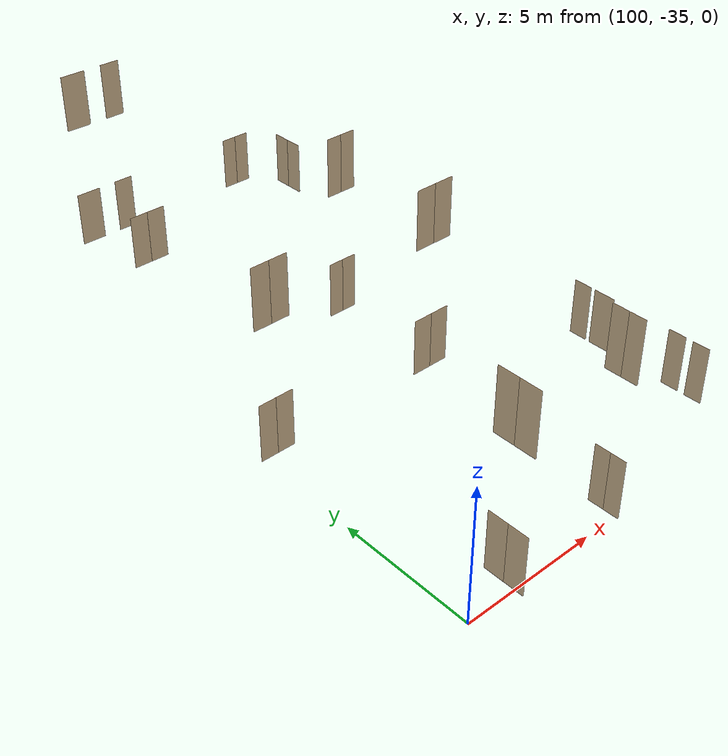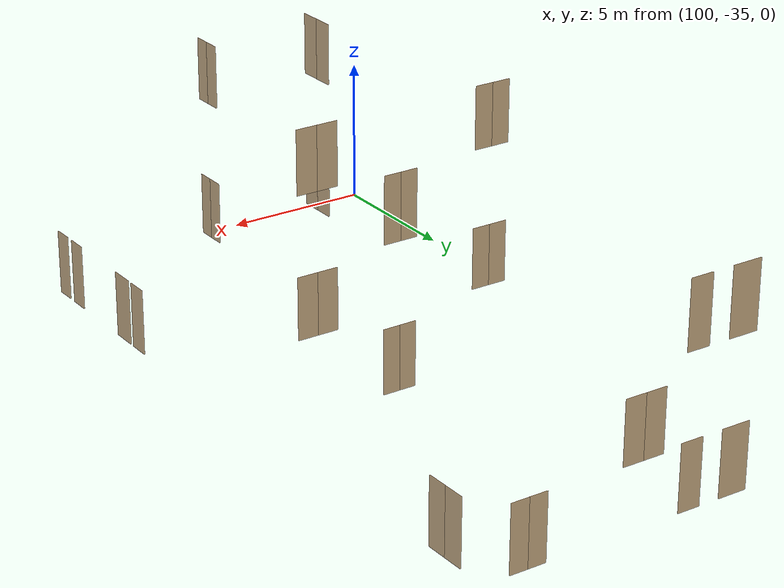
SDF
<sdf version="1.7">
 <world name="sim_world">
  <model name="nullA4">
   <pose>103.26733441063939 -10.786074891340695 0.0 0 0 0.0</pose>
   <link name="right">
    <pose>0 0 1.11 0 0 0</pose>
    <visual name="right_visual">
     <geometry><box><size>0.9855600133734492 0.03 2.2</size></box></geometry>
     <material>
      <ambient>0.5 0.25 0 0.6</ambient>
      <diffuse>0.5 0.25 0 0.6</diffuse>
      <pbr><metal><metalness>0.0</metalness></metal></pbr>
     </material>
    </visual>
    <collision name="right_collision">
     <geometry><box><size>0.9855600133734492 0.03 2.2</size></box></geometry>
     <surface><contact><collide_bitmask>0x02</collide_bitmask></contact></surface>
    </collision>
    <inertial>
     <mass>50.0</mass>
     <inertia><ixx>20.17041666666667</ixx><iyy>24.21386891650281</iyy><izz>4.05095224983614</izz></inertia>
    </inertial>
   </link>
   <joint name="right_joint" type="revolute">
    <parent>world</parent>
    <child>right</child>
    <axis><xyz>0 0 -1</xyz><limit><lower>0</lower><upper>1.57</upper></limit></axis>
    <pose>0.4977800066867246 0 0 0 0 0</pose>
   </joint>
   <plugin name="register_component" filename="libregister_component.so">
    <component name="Door">
     <v_max_door>0.5</v_max_door>
     <a_max_door>0.3</a_max_door>
     <a_nom_door>0.15</a_nom_door>
     <dx_min_door>0.01</dx_min_door>
     <f_max_door>500.0</f_max_door>
     <ros_interface>true</ros_interface>
     <door name="nullA4" type="SwingDoor" left_joint_name="empty_joint" right_joint_name="right_joint"/>
    </component>
   </plugin>
  </model>
  <model name="nullA5">
   <pose>104.86228908949076 -10.786074891340695 0.0 0 0 0.0</pose>
   <link name="right">
    <pose>0 0 1.11 0 0 0</pose>
    <visual name="right_visual">
     <geometry><box><size>0.7620806865039549 0.03 2.2</size></box></geometry>
     <material>
      <ambient>0.5 0.25 0 0.6</ambient>
      <diffuse>0.5 0.25 0 0.6</diffuse>
      <pbr><metal><metalness>0.0</metalness></metal></pbr>
     </material>
    </visual>
    <collision name="right_collision">
     <geometry><box><size>0.7620806865039549 0.03 2.2</size></box></geometry>
     <surface><contact><collide_bitmask>0x02</collide_bitmask></contact></surface>
    </collision>
    <inertial>
     <mass>50.0</mass>
     <inertia><ixx>20.17041666666667</ixx><iyy>22.586529053093084</iyy><izz>2.4236123864264134</izz></inertia>
    </inertial>
   </link>
   <joint name="right_joint" type="revolute">
    <parent>world</parent>
    <child>right</child>
    <axis><xyz>0 0 -1</xyz><limit><lower>0</lower><upper>1.57</upper></limit></axis>
    <pose>0.38604034325197745 0 0 0 0 0</pose>
   </joint>
   <plugin name="register_component" filename="libregister_component.so">
    <component name="Door">
     <v_max_door>0.5</v_max_door>
     <a_max_door>0.3</a_max_door>
     <a_nom_door>0.15</a_nom_door>
     <dx_min_door>0.01</dx_min_door>
     <f_max_door>500.0</f_max_door>
     <ros_interface>true</ros_interface>
     <door name="nullA5" type="SwingDoor" left_joint_name="empty_joint" right_joint_name="right_joint"/>
    </component>
   </plugin>
  </model>
  <model name="nullA6">
   <pose>110.47514571492262 -10.772359857349835 0.0 0 0 3.141592653589793</pose>
   <link name="right">
    <pose>0.3061551784984573 0 1.11 0 0 0</pose>
    <visual name="right_visual">
     <geometry><box><size>0.6023103569969146 0.03 2.2</size></box></geometry>
     <material>
      <ambient>0.5 0.25 0 0.6</ambient>
      <diffuse>0.5 0.25 0 0.6</diffuse>
      <pbr><metal><metalness>0.0</metalness></metal></pbr>
     </material>
    </visual>
    <collision name="right_collision">
     <geometry><box><size>0.6023103569969146 0.03 2.2</size></box></geometry>
     <surface><contact><collide_bitmask>0x02</collide_bitmask></contact></surface>
    </collision>
    <inertial>
     <mass>50.0</mass>
     <inertia><ixx>20.17041666666667</ixx><iyy>21.678240692273967</iyy><izz>1.5153240256072946</izz></inertia>
    </inertial>
   </link>
   <joint name="right_joint" type="revolute">
    <parent>world</parent>
    <child>right</child>
    <axis><xyz>0 0 -1</xyz><limit><lower>0</lower><upper>1.57</upper></limit></axis>
    <pose>0.3061551784984573 0 0 0 0 0</pose>
   </joint>
   <link name="left">
    <pose>-0.3061551784984573 0 1.11 0 0 0</pose>
    <visual name="left_visual">
     <geometry><box><size>0.6023103569969146 0.03 2.2</size></box></geometry>
     <material>
      <ambient>0.5 0.25 0 0.6</ambient>
      <diffuse>0.5 0.25 0 0.6</diffuse>
      <pbr><metal><metalness>0.0</metalness></metal></pbr>
     </material>
    </visual>
    <collision name="left_collision">
     <geometry><box><size>0.6023103569969146 0.03 2.2</size></box></geometry>
     <surface><contact><collide_bitmask>0x02</collide_bitmask></contact></surface>
    </collision>
    <inertial>
     <mass>50.0</mass>
     <inertia><ixx>20.17041666666667</ixx><iyy>21.678240692273967</iyy><izz>1.5153240256072946</izz></inertia>
    </inertial>
   </link>
   <joint name="left_joint" type="revolute">
    <parent>world</parent>
    <child>left</child>
    <axis><xyz>0 0 -1</xyz><limit><lower>-1.57</lower><upper>0</upper></limit></axis>
    <pose>-0.3061551784984573 0 0 0 0 0</pose>
   </joint>
   <plugin name="register_component" filename="libregister_component.so">
    <component name="Door">
     <v_max_door>0.5</v_max_door>
     <a_max_door>0.3</a_max_door>
     <a_nom_door>0.15</a_nom_door>
     <dx_min_door>0.01</dx_min_door>
     <f_max_door>500.0</f_max_door>
     <ros_interface>true</ros_interface>
     <door name="nullA6" type="DoubleSwingDoor" left_joint_name="left_joint" right_joint_name="right_joint"/>
    </component>
   </plugin>
  </model>
  <model name="nullA7">
   <pose>111.96544262416887 -12.496836063746805 0.0 0 0 1.5844014553708272</pose>
   <link name="right">
    <pose>0.36283689730992447 0 1.11 0 0 0</pose>
    <visual name="right_visual">
     <geometry><box><size>0.7156737946198489 0.03 2.2</size></box></geometry>
     <material>
      <ambient>0.5 0.25 0 0.6</ambient>
      <diffuse>0.5 0.25 0 0.6</diffuse>
      <pbr><metal><metalness>0.0</metalness></metal></pbr>
     </material>
    </visual>
    <collision name="right_collision">
     <geometry><box><size>0.7156737946198489 0.03 2.2</size></box></geometry>
     <surface><contact><collide_bitmask>0x02</collide_bitmask></contact></surface>
    </collision>
    <inertial>
     <mass>50.0</mass>
     <inertia><ixx>20.17041666666667</ixx><iyy>22.300787417939894</iyy><izz>2.137870751273224</izz></inertia>
    </inertial>
   </link>
   <joint name="right_joint" type="revolute">
    <parent>world</parent>
    <child>right</child>
    <axis><xyz>0 0 -1</xyz><limit><lower>0</lower><upper>1.57</upper></limit></axis>
    <pose>0.36283689730992447 0 0 0 0 0</pose>
   </joint>
   <link name="left">
    <pose>-0.36283689730992447 0 1.11 0 0 0</pose>
    <visual name="left_visual">
     <geometry><box><size>0.7156737946198489 0.03 2.2</size></box></geometry>
     <material>
      <ambient>0.5 0.25 0 0.6</ambient>
      <diffuse>0.5 0.25 0 0.6</diffuse>
      <pbr><metal><metalness>0.0</metalness></metal></pbr>
     </material>
    </visual>
    <collision name="left_collision">
     <geometry><box><size>0.7156737946198489 0.03 2.2</size></box></geometry>
     <surface><contact><collide_bitmask>0x02</collide_bitmask></contact></surface>
    </collision>
    <inertial>
     <mass>50.0</mass>
     <inertia><ixx>20.17041666666667</ixx><iyy>22.300787417939894</iyy><izz>2.137870751273224</izz></inertia>
    </inertial>
   </link>
   <joint name="left_joint" type="revolute">
    <parent>world</parent>
    <child>left</child>
    <axis><xyz>0 0 -1</xyz><limit><lower>-1.57</lower><upper>0</upper></limit></axis>
    <pose>-0.36283689730992447 0 0 0 0 0</pose>
   </joint>
   <plugin name="register_component" filename="libregister_component.so">
    <component name="Door">
     <v_max_door>0.5</v_max_door>
     <a_max_door>0.3</a_max_door>
     <a_nom_door>0.15</a_nom_door>
     <dx_min_door>0.01</dx_min_door>
     <f_max_door>500.0</f_max_door>
     <ros_interface>true</ros_interface>
     <door name="nullA7" type="DoubleSwingDoor" left_joint_name="left_joint" right_joint_name="right_joint"/>
    </component>
   </plugin>
  </model>
  <model name="nullA8">
   <pose>107.422540956202 -21.278356365392487 0.0 0 0 3.141592653589793</pose>
   <link name="right">
    <pose>0.2911429659348421 0 1.11 0 0 0</pose>
    <visual name="right_visual">
     <geometry><box><size>0.5722859318696842 0.03 2.2</size></box></geometry>
     <material>
      <ambient>0.5 0.25 0 0.6</ambient>
      <diffuse>0.5 0.25 0 0.6</diffuse>
      <pbr><metal><metalness>0.0</metalness></metal></pbr>
     </material>
    </visual>
    <collision name="right_collision">
     <geometry><box><size>0.5722859318696842 0.03 2.2</size></box></geometry>
     <surface><contact><collide_bitmask>0x02</collide_bitmask></contact></surface>
    </collision>
    <inertial>
     <mass>50.0</mass>
     <inertia><ixx>20.17041666666667</ixx><iyy>21.53129661589981</iyy><izz>1.3683799492331372</izz></inertia>
    </inertial>
   </link>
   <joint name="right_joint" type="revolute">
    <parent>world</parent>
    <child>right</child>
    <axis><xyz>0 0 -1</xyz><limit><lower>0</lower><upper>1.57</upper></limit></axis>
    <pose>0.2911429659348421 0 0 0 0 0</pose>
   </joint>
   <link name="left">
    <pose>-0.2911429659348421 0 1.11 0 0 0</pose>
    <visual name="left_visual">
     <geometry><box><size>0.5722859318696842 0.03 2.2</size></box></geometry>
     <material>
      <ambient>0.5 0.25 0 0.6</ambient>
      <diffuse>0.5 0.25 0 0.6</diffuse>
      <pbr><metal><metalness>0.0</metalness></metal></pbr>
     </material>
    </visual>
    <collision name="left_collision">
     <geometry><box><size>0.5722859318696842 0.03 2.2</size></box></geometry>
     <surface><contact><collide_bitmask>0x02</collide_bitmask></contact></surface>
    </collision>
    <inertial>
     <mass>50.0</mass>
     <inertia><ixx>20.17041666666667</ixx><iyy>21.53129661589981</iyy><izz>1.3683799492331372</izz></inertia>
    </inertial>
   </link>
   <joint name="left_joint" type="revolute">
    <parent>world</parent>
    <child>left</child>
    <axis><xyz>0 0 -1</xyz><limit><lower>-1.57</lower><upper>0</upper></limit></axis>
    <pose>-0.2911429659348421 0 0 0 0 0</pose>
   </joint>
   <plugin name="register_component" filename="libregister_component.so">
    <component name="Door">
     <v_max_door>0.5</v_max_door>
     <a_max_door>0.3</a_max_door>
     <a_nom_door>0.15</a_nom_door>
     <dx_min_door>0.01</dx_min_door>
     <f_max_door>500.0</f_max_door>
     <ros_interface>true</ros_interface>
     <door name="nullA8" type="DoubleSwingDoor" left_joint_name="left_joint" right_joint_name="right_joint"/>
    </component>
   </plugin>
  </model>
  <model name="nullA9">
   <pose>107.40374939633722 -25.899032653516123 0.0 0 0 0.0</pose>
   <link name="right">
    <pose>0.3756629146699346 0 1.11 0 0 0</pose>
    <visual name="right_visual">
     <geometry><box><size>0.7413258293398692 0.03 2.2</size></box></geometry>
     <material>
      <ambient>0.5 0.25 0 0.6</ambient>
      <diffuse>0.5 0.25 0 0.6</diffuse>
      <pbr><metal><metalness>0.0</metalness></metal></pbr>
     </material>
    </visual>
    <collision name="right_collision">
     <geometry><box><size>0.7413258293398692 0.03 2.2</size></box></geometry>
     <surface><contact><collide_bitmask>0x02</collide_bitmask></contact></surface>
    </collision>
    <inertial>
     <mass>50.0</mass>
     <inertia><ixx>20.17041666666667</ixx><iyy>22.456516605193524</iyy><izz>2.293599938526854</izz></inertia>
    </inertial>
   </link>
   <joint name="right_joint" type="revolute">
    <parent>world</parent>
    <child>right</child>
    <axis><xyz>0 0 -1</xyz><limit><lower>0</lower><upper>1.57</upper></limit></axis>
    <pose>0.3756629146699346 0 0 0 0 0</pose>
   </joint>
   <link name="left">
    <pose>-0.3756629146699346 0 1.11 0 0 0</pose>
    <visual name="left_visual">
     <geometry><box><size>0.7413258293398692 0.03 2.2</size></box></geometry>
     <material>
      <ambient>0.5 0.25 0 0.6</ambient>
      <diffuse>0.5 0.25 0 0.6</diffuse>
      <pbr><metal><metalness>0.0</metalness></metal></pbr>
     </material>
    </visual>
    <collision name="left_collision">
     <geometry><box><size>0.7413258293398692 0.03 2.2</size></box></geometry>
     <surface><contact><collide_bitmask>0x02</collide_bitmask></contact></surface>
    </collision>
    <inertial>
     <mass>50.0</mass>
     <inertia><ixx>20.17041666666667</ixx><iyy>22.456516605193524</iyy><izz>2.293599938526854</izz></inertia>
    </inertial>
   </link>
   <joint name="left_joint" type="revolute">
    <parent>world</parent>
    <child>left</child>
    <axis><xyz>0 0 -1</xyz><limit><lower>-1.57</lower><upper>0</upper></limit></axis>
    <pose>-0.3756629146699346 0 0 0 0 0</pose>
   </joint>
   <plugin name="register_component" filename="libregister_component.so">
    <component name="Door">
     <v_max_door>0.5</v_max_door>
     <a_max_door>0.3</a_max_door>
     <a_nom_door>0.15</a_nom_door>
     <dx_min_door>0.01</dx_min_door>
     <f_max_door>500.0</f_max_door>
     <ros_interface>true</ros_interface>
     <door name="nullA9" type="DoubleSwingDoor" left_joint_name="left_joint" right_joint_name="right_joint"/>
    </component>
   </plugin>
  </model>
  <model name="nullA10">
   <pose>100.60339239942056 -25.975096400312065 0.0 0 0 0.0</pose>
   <link name="right">
    <pose>0.33268072736728627 0 1.11 0 0 0</pose>
    <visual name="right_visual">
     <geometry><box><size>0.6553614547345725 0.03 2.2</size></box></geometry>
     <material>
      <ambient>0.5 0.25 0 0.6</ambient>
      <diffuse>0.5 0.25 0 0.6</diffuse>
      <pbr><metal><metalness>0.0</metalness></metal></pbr>
     </material>
    </visual>
    <collision name="right_collision">
     <geometry><box><size>0.6553614547345725 0.03 2.2</size></box></geometry>
     <surface><contact><collide_bitmask>0x02</collide_bitmask></contact></surface>
    </collision>
    <inertial>
     <mass>50.0</mass>
     <inertia><ixx>20.17041666666667</ixx><iyy>21.95624431813257</iyy><izz>1.7933276514658967</izz></inertia>
    </inertial>
   </link>
   <joint name="right_joint" type="revolute">
    <parent>world</parent>
    <child>right</child>
    <axis><xyz>0 0 -1</xyz><limit><lower>0</lower><upper>1.57</upper></limit></axis>
    <pose>0.33268072736728627 0 0 0 0 0</pose>
   </joint>
   <link name="left">
    <pose>-0.33268072736728627 0 1.11 0 0 0</pose>
    <visual name="left_visual">
     <geometry><box><size>0.6553614547345725 0.03 2.2</size></box></geometry>
     <material>
      <ambient>0.5 0.25 0 0.6</ambient>
      <diffuse>0.5 0.25 0 0.6</diffuse>
      <pbr><metal><metalness>0.0</metalness></metal></pbr>
     </material>
    </visual>
    <collision name="left_collision">
     <geometry><box><size>0.6553614547345725 0.03 2.2</size></box></geometry>
     <surface><contact><collide_bitmask>0x02</collide_bitmask></contact></surface>
    </collision>
    <inertial>
     <mass>50.0</mass>
     <inertia><ixx>20.17041666666667</ixx><iyy>21.95624431813257</iyy><izz>1.7933276514658967</izz></inertia>
    </inertial>
   </link>
   <joint name="left_joint" type="revolute">
    <parent>world</parent>
    <child>left</child>
    <axis><xyz>0 0 -1</xyz><limit><lower>-1.57</lower><upper>0</upper></limit></axis>
    <pose>-0.33268072736728627 0 0 0 0 0</pose>
   </joint>
   <plugin name="register_component" filename="libregister_component.so">
    <component name="Door">
     <v_max_door>0.5</v_max_door>
     <a_max_door>0.3</a_max_door>
     <a_nom_door>0.15</a_nom_door>
     <dx_min_door>0.01</dx_min_door>
     <f_max_door>500.0</f_max_door>
     <ros_interface>true</ros_interface>
     <door name="nullA10" type="DoubleSwingDoor" left_joint_name="left_joint" right_joint_name="right_joint"/>
    </component>
   </plugin>
  </model>
  <model name="nullA26">
   <pose>101.86914419183483 -34.56450806122072 0.0 0 0 1.5759517900146587</pose>
   <link name="right">
    <pose>0.37402011778586763 0 1.11 0 0 0</pose>
    <visual name="right_visual">
     <geometry><box><size>0.7380402355717353 0.03 2.2</size></box></geometry>
     <material>
      <ambient>0.5 0.25 0 0.6</ambient>
      <diffuse>0.5 0.25 0 0.6</diffuse>
      <pbr><metal><metalness>0.0</metalness></metal></pbr>
     </material>
    </visual>
    <collision name="right_collision">
     <geometry><box><size>0.7380402355717353 0.03 2.2</size></box></geometry>
     <surface><contact><collide_bitmask>0x02</collide_bitmask></contact></surface>
    </collision>
    <inertial>
     <mass>50.0</mass>
     <inertia><ixx>20.17041666666667</ixx><iyy>22.436264122178265</iyy><izz>2.273347455511594</izz></inertia>
    </inertial>
   </link>
   <joint name="right_joint" type="revolute">
    <parent>world</parent>
    <child>right</child>
    <axis><xyz>0 0 1</xyz><limit><lower>0</lower><upper>1.57</upper></limit></axis>
    <pose>0.37402011778586763 0 0 0 0 0</pose>
   </joint>
   <link name="left">
    <pose>-0.37402011778586763 0 1.11 0 0 0</pose>
    <visual name="left_visual">
     <geometry><box><size>0.7380402355717353 0.03 2.2</size></box></geometry>
     <material>
      <ambient>0.5 0.25 0 0.6</ambient>
      <diffuse>0.5 0.25 0 0.6</diffuse>
      <pbr><metal><metalness>0.0</metalness></metal></pbr>
     </material>
    </visual>
    <collision name="left_collision">
     <geometry><box><size>0.7380402355717353 0.03 2.2</size></box></geometry>
     <surface><contact><collide_bitmask>0x02</collide_bitmask></contact></surface>
    </collision>
    <inertial>
     <mass>50.0</mass>
     <inertia><ixx>20.17041666666667</ixx><iyy>22.436264122178265</iyy><izz>2.273347455511594</izz></inertia>
    </inertial>
   </link>
   <joint name="left_joint" type="revolute">
    <parent>world</parent>
    <child>left</child>
    <axis><xyz>0 0 1</xyz><limit><lower>-1.57</lower><upper>0</upper></limit></axis>
    <pose>-0.37402011778586763 0 0 0 0 0</pose>
   </joint>
   <plugin name="register_component" filename="libregister_component.so">
    <component name="Door">
     <v_max_door>0.5</v_max_door>
     <a_max_door>0.3</a_max_door>
     <a_nom_door>0.15</a_nom_door>
     <dx_min_door>0.01</dx_min_door>
     <f_max_door>500.0</f_max_door>
     <ros_interface>true</ros_interface>
     <door name="nullA26" type="DoubleSwingDoor" left_joint_name="left_joint" right_joint_name="right_joint"/>
    </component>
   </plugin>
  </model>
  <model name="nullA27">
   <pose>106.27885016159597 -34.550891192094824 0.0 0 0 1.5744295709884155</pose>
   <link name="right">
    <pose>0.2875548345139819 0 1.11 0 0 0</pose>
    <visual name="right_visual">
     <geometry><box><size>0.5651096690279638 0.03 2.2</size></box></geometry>
     <material>
      <ambient>0.5 0.25 0 0.6</ambient>
      <diffuse>0.5 0.25 0 0.6</diffuse>
      <pbr><metal><metalness>0.0</metalness></metal></pbr>
     </material>
    </visual>
    <collision name="right_collision">
     <geometry><box><size>0.5651096690279638 0.03 2.2</size></box></geometry>
     <surface><contact><collide_bitmask>0x02</collide_bitmask></contact></surface>
    </collision>
    <inertial>
     <mass>50.0</mass>
     <inertia><ixx>20.17041666666667</ixx><iyy>21.497287241787063</iyy><izz>1.334370575120395</izz></inertia>
    </inertial>
   </link>
   <joint name="right_joint" type="revolute">
    <parent>world</parent>
    <child>right</child>
    <axis><xyz>0 0 -1</xyz><limit><lower>0</lower><upper>1.57</upper></limit></axis>
    <pose>0.2875548345139819 0 0 0 0 0</pose>
   </joint>
   <link name="left">
    <pose>-0.2875548345139819 0 1.11 0 0 0</pose>
    <visual name="left_visual">
     <geometry><box><size>0.5651096690279638 0.03 2.2</size></box></geometry>
     <material>
      <ambient>0.5 0.25 0 0.6</ambient>
      <diffuse>0.5 0.25 0 0.6</diffuse>
      <pbr><metal><metalness>0.0</metalness></metal></pbr>
     </material>
    </visual>
    <collision name="left_collision">
     <geometry><box><size>0.5651096690279638 0.03 2.2</size></box></geometry>
     <surface><contact><collide_bitmask>0x02</collide_bitmask></contact></surface>
    </collision>
    <inertial>
     <mass>50.0</mass>
     <inertia><ixx>20.17041666666667</ixx><iyy>21.497287241787063</iyy><izz>1.334370575120395</izz></inertia>
    </inertial>
   </link>
   <joint name="left_joint" type="revolute">
    <parent>world</parent>
    <child>left</child>
    <axis><xyz>0 0 -1</xyz><limit><lower>-1.57</lower><upper>0</upper></limit></axis>
    <pose>-0.2875548345139819 0 0 0 0 0</pose>
   </joint>
   <plugin name="register_component" filename="libregister_component.so">
    <component name="Door">
     <v_max_door>0.5</v_max_door>
     <a_max_door>0.3</a_max_door>
     <a_nom_door>0.15</a_nom_door>
     <dx_min_door>0.01</dx_min_door>
     <f_max_door>500.0</f_max_door>
     <ros_interface>true</ros_interface>
     <door name="nullA27" type="DoubleSwingDoor" left_joint_name="left_joint" right_joint_name="right_joint"/>
    </component>
   </plugin>
  </model>
  <model name="nullA28">
   <pose>112.69629406738743 -28.141903488242523 0.0 0 0 -1.5707963267948966</pose>
   <link name="right">
    <pose>0 0 1.11 0 0 0</pose>
    <visual name="right_visual">
     <geometry><box><size>0.7021159775623198 0.03 2.2</size></box></geometry>
     <material>
      <ambient>0.5 0.25 0 0.6</ambient>
      <diffuse>0.5 0.25 0 0.6</diffuse>
      <pbr><metal><metalness>0.0</metalness></metal></pbr>
     </material>
    </visual>
    <collision name="right_collision">
     <geometry><box><size>0.7021159775623198 0.03 2.2</size></box></geometry>
     <surface><contact><collide_bitmask>0x02</collide_bitmask></contact></surface>
    </collision>
    <inertial>
     <mass>50.0</mass>
     <inertia><ixx>20.17041666666667</ixx><iyy>22.22069519145122</iyy><izz>2.05777852478455</izz></inertia>
    </inertial>
   </link>
   <joint name="right_joint" type="revolute">
    <parent>world</parent>
    <child>right</child>
    <axis><xyz>0 0 -1</xyz><limit><lower>0</lower><upper>1.57</upper></limit></axis>
    <pose>0.3560579887811599 0 0 0 0 0</pose>
   </joint>
   <plugin name="register_component" filename="libregister_component.so">
    <component name="Door">
     <v_max_door>0.5</v_max_door>
     <a_max_door>0.3</a_max_door>
     <a_nom_door>0.15</a_nom_door>
     <dx_min_door>0.01</dx_min_door>
     <f_max_door>500.0</f_max_door>
     <ros_interface>true</ros_interface>
     <door name="nullA28" type="SwingDoor" left_joint_name="empty_joint" right_joint_name="right_joint"/>
    </component>
   </plugin>
  </model>
  <model name="nullA29">
   <pose>112.69629406738743 -29.086824454846038 0.0 0 0 -1.5707963267948966</pose>
   <link name="right">
    <pose>0 0 1.11 0 0 0</pose>
    <visual name="right_visual">
     <geometry><box><size>0.8390699877410073 0.03 2.2</size></box></geometry>
     <material>
      <ambient>0.5 0.25 0 0.6</ambient>
      <diffuse>0.5 0.25 0 0.6</diffuse>
      <pbr><metal><metalness>0.0</metalness></metal></pbr>
     </material>
    </visual>
    <collision name="right_collision">
     <geometry><box><size>0.8390699877410073 0.03 2.2</size></box></geometry>
     <surface><contact><collide_bitmask>0x02</collide_bitmask></contact></surface>
    </collision>
    <inertial>
     <mass>50.0</mass>
     <inertia><ixx>20.17041666666667</ixx><iyy>23.10016018469873</iyy><izz>2.937243518032059</izz></inertia>
    </inertial>
   </link>
   <joint name="right_joint" type="revolute">
    <parent>world</parent>
    <child>right</child>
    <axis><xyz>0 0 -1</xyz><limit><lower>0</lower><upper>1.57</upper></limit></axis>
    <pose>0.42453499387050364 0 0 0 0 0</pose>
   </joint>
   <plugin name="register_component" filename="libregister_component.so">
    <component name="Door">
     <v_max_door>0.5</v_max_door>
     <a_max_door>0.3</a_max_door>
     <a_nom_door>0.15</a_nom_door>
     <dx_min_door>0.01</dx_min_door>
     <f_max_door>500.0</f_max_door>
     <ros_interface>true</ros_interface>
     <door name="nullA29" type="SwingDoor" left_joint_name="empty_joint" right_joint_name="right_joint"/>
    </component>
   </plugin>
  </model>
  <model name="nullA30">
   <pose>112.69629406738743 -32.181808388127365 0.0 0 0 -1.5707963267948966</pose>
   <link name="right">
    <pose>0 0 1.11 0 0 0</pose>
    <visual name="right_visual">
     <geometry><box><size>0.6747420037891432 0.03 2.2</size></box></geometry>
     <material>
      <ambient>0.5 0.25 0 0.6</ambient>
      <diffuse>0.5 0.25 0 0.6</diffuse>
      <pbr><metal><metalness>0.0</metalness></metal></pbr>
     </material>
    </visual>
    <collision name="right_collision">
     <geometry><box><size>0.6747420037891432 0.03 2.2</size></box></geometry>
     <surface><contact><collide_bitmask>0x02</collide_bitmask></contact></surface>
    </collision>
    <inertial>
     <mass>50.0</mass>
     <inertia><ixx>20.17041666666667</ixx><iyy>22.063653215322457</iyy><izz>1.900736548655784</izz></inertia>
    </inertial>
   </link>
   <joint name="right_joint" type="revolute">
    <parent>world</parent>
    <child>right</child>
    <axis><xyz>0 0 -1</xyz><limit><lower>0</lower><upper>1.57</upper></limit></axis>
    <pose>0.3423710018945716 0 0 0 0 0</pose>
   </joint>
   <plugin name="register_component" filename="libregister_component.so">
    <component name="Door">
     <v_max_door>0.5</v_max_door>
     <a_max_door>0.3</a_max_door>
     <a_nom_door>0.15</a_nom_door>
     <dx_min_door>0.01</dx_min_door>
     <f_max_door>500.0</f_max_door>
     <ros_interface>true</ros_interface>
     <door name="nullA30" type="SwingDoor" left_joint_name="empty_joint" right_joint_name="right_joint"/>
    </component>
   </plugin>
  </model>
  <model name="nullA31">
   <pose>112.70087976893652 -33.125186763995714 0.0 0 0 -1.5567791542790717</pose>
   <link name="right">
    <pose>0 0 1.11 0 0 0</pose>
    <visual name="right_visual">
     <geometry><box><size>0.6443190810635621 0.03 2.2</size></box></geometry>
     <material>
      <ambient>0.5 0.25 0 0.6</ambient>
      <diffuse>0.5 0.25 0 0.6</diffuse>
      <pbr><metal><metalness>0.0</metalness></metal></pbr>
     </material>
    </visual>
    <collision name="right_collision">
     <geometry><box><size>0.6443190810635621 0.03 2.2</size></box></geometry>
     <surface><contact><collide_bitmask>0x02</collide_bitmask></contact></surface>
    </collision>
    <inertial>
     <mass>50.0</mass>
     <inertia><ixx>20.17041666666667</ixx><iyy>21.896446159260808</iyy><izz>1.733529492594138</izz></inertia>
    </inertial>
   </link>
   <joint name="right_joint" type="revolute">
    <parent>world</parent>
    <child>right</child>
    <axis><xyz>0 0 -1</xyz><limit><lower>0</lower><upper>1.57</upper></limit></axis>
    <pose>0.32715954053178103 0 0 0 0 0</pose>
   </joint>
   <plugin name="register_component" filename="libregister_component.so">
    <component name="Door">
     <v_max_door>0.5</v_max_door>
     <a_max_door>0.3</a_max_door>
     <a_nom_door>0.15</a_nom_door>
     <dx_min_door>0.01</dx_min_door>
     <f_max_door>500.0</f_max_door>
     <ros_interface>true</ros_interface>
     <door name="nullA31" type="SwingDoor" left_joint_name="empty_joint" right_joint_name="right_joint"/>
    </component>
   </plugin>
  </model>
  <model name="nullA32">
   <pose>104.08008339834325 -13.67646922248227 0.0 0 0 0.0</pose>
   <link name="right">
    <pose>0.3777243768342089 0 1.11 0 0 0</pose>
    <visual name="right_visual">
     <geometry><box><size>0.7454487536684178 0.03 2.2</size></box></geometry>
     <material>
      <ambient>0.5 0.25 0 0.6</ambient>
      <diffuse>0.5 0.25 0 0.6</diffuse>
      <pbr><metal><metalness>0.0</metalness></metal></pbr>
     </material>
    </visual>
    <collision name="right_collision">
     <geometry><box><size>0.7454487536684178 0.03 2.2</size></box></geometry>
     <surface><contact><collide_bitmask>0x02</collide_bitmask></contact></surface>
    </collision>
    <inertial>
     <mass>50.0</mass>
     <inertia><ixx>20.17041666666667</ixx><iyy>22.482057684774162</iyy><izz>2.3191410181074894</izz></inertia>
    </inertial>
   </link>
   <joint name="right_joint" type="revolute">
    <parent>world</parent>
    <child>right</child>
    <axis><xyz>0 0 -1</xyz><limit><lower>0</lower><upper>1.57</upper></limit></axis>
    <pose>0.3777243768342089 0 0 0 0 0</pose>
   </joint>
   <link name="left">
    <pose>-0.3777243768342089 0 1.11 0 0 0</pose>
    <visual name="left_visual">
     <geometry><box><size>0.7454487536684178 0.03 2.2</size></box></geometry>
     <material>
      <ambient>0.5 0.25 0 0.6</ambient>
      <diffuse>0.5 0.25 0 0.6</diffuse>
      <pbr><metal><metalness>0.0</metalness></metal></pbr>
     </material>
    </visual>
    <collision name="left_collision">
     <geometry><box><size>0.7454487536684178 0.03 2.2</size></box></geometry>
     <surface><contact><collide_bitmask>0x02</collide_bitmask></contact></surface>
    </collision>
    <inertial>
     <mass>50.0</mass>
     <inertia><ixx>20.17041666666667</ixx><iyy>22.482057684774162</iyy><izz>2.3191410181074894</izz></inertia>
    </inertial>
   </link>
   <joint name="left_joint" type="revolute">
    <parent>world</parent>
    <child>left</child>
    <axis><xyz>0 0 -1</xyz><limit><lower>-1.57</lower><upper>0</upper></limit></axis>
    <pose>-0.3777243768342089 0 0 0 0 0</pose>
   </joint>
   <plugin name="register_component" filename="libregister_component.so">
    <component name="Door">
     <v_max_door>0.5</v_max_door>
     <a_max_door>0.3</a_max_door>
     <a_nom_door>0.15</a_nom_door>
     <dx_min_door>0.01</dx_min_door>
     <f_max_door>500.0</f_max_door>
     <ros_interface>true</ros_interface>
     <door name="nullA32" type="DoubleSwingDoor" left_joint_name="left_joint" right_joint_name="right_joint"/>
    </component>
   </plugin>
  </model>
  <model name="anullA4">
   <pose>103.26966193263951 -10.75884217969546 5.0 0 0 8.618188393581861e-07</pose>
   <link name="right">
    <pose>0 0 1.11 0 0 0</pose>
    <visual name="right_visual">
     <geometry><box><size>0.9855643033413681 0.03 2.2</size></box></geometry>
     <material>
      <ambient>0.5 0.25 0 0.6</ambient>
      <diffuse>0.5 0.25 0 0.6</diffuse>
      <pbr><metal><metalness>0.0</metalness></metal></pbr>
     </material>
    </visual>
    <collision name="right_collision">
     <geometry><box><size>0.9855643033413681 0.03 2.2</size></box></geometry>
     <surface><contact><collide_bitmask>0x02</collide_bitmask></contact></surface>
    </collision>
    <inertial>
     <mass>50.0</mass>
     <inertia><ixx>20.17041666666667</ixx><iyy>24.213904150086492</iyy><izz>4.050987483419818</izz></inertia>
    </inertial>
   </link>
   <joint name="right_joint" type="revolute">
    <parent>world</parent>
    <child>right</child>
    <axis><xyz>0 0 -1</xyz><limit><lower>0</lower><upper>1.57</upper></limit></axis>
    <pose>0.49778215167068407 0 0 0 0 0</pose>
   </joint>
   <plugin name="register_component" filename="libregister_component.so">
    <component name="Door">
     <v_max_door>0.5</v_max_door>
     <a_max_door>0.3</a_max_door>
     <a_nom_door>0.15</a_nom_door>
     <dx_min_door>0.01</dx_min_door>
     <f_max_door>500.0</f_max_door>
     <ros_interface>true</ros_interface>
     <door name="anullA4" type="SwingDoor" left_joint_name="empty_joint" right_joint_name="right_joint"/>
    </component>
   </plugin>
  </model>
  <model name="anullA5">
   <pose>104.86462348430993 -10.758840805127546 5.0 0 0 8.618188395463988e-07</pose>
   <link name="right">
    <pose>0 0 1.11 0 0 0</pose>
    <visual name="right_visual">
     <geometry><box><size>0.7620840134770579 0.03 2.2</size></box></geometry>
     <material>
      <ambient>0.5 0.25 0 0.6</ambient>
      <diffuse>0.5 0.25 0 0.6</diffuse>
      <pbr><metal><metalness>0.0</metalness></metal></pbr>
     </material>
    </visual>
    <collision name="right_collision">
     <geometry><box><size>0.7620840134770579 0.03 2.2</size></box></geometry>
     <surface><contact><collide_bitmask>0x02</collide_bitmask></contact></surface>
    </collision>
    <inertial>
     <mass>50.0</mass>
     <inertia><ixx>20.17041666666667</ixx><iyy>22.586550181655422</iyy><izz>2.4236335149887527</izz></inertia>
    </inertial>
   </link>
   <joint name="right_joint" type="revolute">
    <parent>world</parent>
    <child>right</child>
    <axis><xyz>0 0 -1</xyz><limit><lower>0</lower><upper>1.57</upper></limit></axis>
    <pose>0.38604200673852895 0 0 0 0 0</pose>
   </joint>
   <plugin name="register_component" filename="libregister_component.so">
    <component name="Door">
     <v_max_door>0.5</v_max_door>
     <a_max_door>0.3</a_max_door>
     <a_nom_door>0.15</a_nom_door>
     <dx_min_door>0.01</dx_min_door>
     <f_max_door>500.0</f_max_door>
     <ros_interface>true</ros_interface>
     <door name="anullA5" type="SwingDoor" left_joint_name="empty_joint" right_joint_name="right_joint"/>
    </component>
   </plugin>
  </model>
  <model name="anullA8">
   <pose>107.42489542588703 -21.251165284985525 5.0 0 0 -3.1415917917709533</pose>
   <link name="right">
    <pose>0.29114422049907573 0 1.11 0 0 0</pose>
    <visual name="right_visual">
     <geometry><box><size>0.5722884409981515 0.03 2.2</size></box></geometry>
     <material>
      <ambient>0.5 0.25 0 0.6</ambient>
      <diffuse>0.5 0.25 0 0.6</diffuse>
      <pbr><metal><metalness>0.0</metalness></metal></pbr>
     </material>
    </visual>
    <collision name="right_collision">
     <geometry><box><size>0.5722884409981515 0.03 2.2</size></box></geometry>
     <surface><contact><collide_bitmask>0x02</collide_bitmask></contact></surface>
    </collision>
    <inertial>
     <mass>50.0</mass>
     <inertia><ixx>20.17041666666667</ixx><iyy>21.53130858208373</iyy><izz>1.3683919154170612</izz></inertia>
    </inertial>
   </link>
   <joint name="right_joint" type="revolute">
    <parent>world</parent>
    <child>right</child>
    <axis><xyz>0 0 -1</xyz><limit><lower>0</lower><upper>1.57</upper></limit></axis>
    <pose>0.29114422049907573 0 0 0 0 0</pose>
   </joint>
   <link name="left">
    <pose>-0.29114422049907573 0 1.11 0 0 0</pose>
    <visual name="left_visual">
     <geometry><box><size>0.5722884409981515 0.03 2.2</size></box></geometry>
     <material>
      <ambient>0.5 0.25 0 0.6</ambient>
      <diffuse>0.5 0.25 0 0.6</diffuse>
      <pbr><metal><metalness>0.0</metalness></metal></pbr>
     </material>
    </visual>
    <collision name="left_collision">
     <geometry><box><size>0.5722884409981515 0.03 2.2</size></box></geometry>
     <surface><contact><collide_bitmask>0x02</collide_bitmask></contact></surface>
    </collision>
    <inertial>
     <mass>50.0</mass>
     <inertia><ixx>20.17041666666667</ixx><iyy>21.53130858208373</iyy><izz>1.3683919154170612</izz></inertia>
    </inertial>
   </link>
   <joint name="left_joint" type="revolute">
    <parent>world</parent>
    <child>left</child>
    <axis><xyz>0 0 -1</xyz><limit><lower>-1.57</lower><upper>0</upper></limit></axis>
    <pose>-0.29114422049907573 0 0 0 0 0</pose>
   </joint>
   <plugin name="register_component" filename="libregister_component.so">
    <component name="Door">
     <v_max_door>0.5</v_max_door>
     <a_max_door>0.3</a_max_door>
     <a_nom_door>0.15</a_nom_door>
     <dx_min_door>0.01</dx_min_door>
     <f_max_door>500.0</f_max_door>
     <ros_interface>true</ros_interface>
     <door name="anullA8" type="DoubleSwingDoor" left_joint_name="left_joint" right_joint_name="right_joint"/>
    </component>
   </plugin>
  </model>
  <model name="anullA9">
   <pose>107.40610776725057 -25.871861500259854 5.0 0 0 8.618188396989464e-07</pose>
   <link name="right">
    <pose>0.3756645334391005 0 1.11 0 0 0</pose>
    <visual name="right_visual">
     <geometry><box><size>0.741329066878201 0.03 2.2</size></box></geometry>
     <material>
      <ambient>0.5 0.25 0 0.6</ambient>
      <diffuse>0.5 0.25 0 0.6</diffuse>
      <pbr><metal><metalness>0.0</metalness></metal></pbr>
     </material>
    </visual>
    <collision name="right_collision">
     <geometry><box><size>0.741329066878201 0.03 2.2</size></box></geometry>
     <surface><contact><collide_bitmask>0x02</collide_bitmask></contact></surface>
    </collision>
    <inertial>
     <mass>50.0</mass>
     <inertia><ixx>20.17041666666667</ixx><iyy>22.456536605827107</iyy><izz>2.2936199391604344</izz></inertia>
    </inertial>
   </link>
   <joint name="right_joint" type="revolute">
    <parent>world</parent>
    <child>right</child>
    <axis><xyz>0 0 -1</xyz><limit><lower>0</lower><upper>1.57</upper></limit></axis>
    <pose>0.3756645334391005 0 0 0 0 0</pose>
   </joint>
   <link name="left">
    <pose>-0.3756645334391005 0 1.11 0 0 0</pose>
    <visual name="left_visual">
     <geometry><box><size>0.741329066878201 0.03 2.2</size></box></geometry>
     <material>
      <ambient>0.5 0.25 0 0.6</ambient>
      <diffuse>0.5 0.25 0 0.6</diffuse>
      <pbr><metal><metalness>0.0</metalness></metal></pbr>
     </material>
    </visual>
    <collision name="left_collision">
     <geometry><box><size>0.741329066878201 0.03 2.2</size></box></geometry>
     <surface><contact><collide_bitmask>0x02</collide_bitmask></contact></surface>
    </collision>
    <inertial>
     <mass>50.0</mass>
     <inertia><ixx>20.17041666666667</ixx><iyy>22.456536605827107</iyy><izz>2.2936199391604344</izz></inertia>
    </inertial>
   </link>
   <joint name="left_joint" type="revolute">
    <parent>world</parent>
    <child>left</child>
    <axis><xyz>0 0 -1</xyz><limit><lower>-1.57</lower><upper>0</upper></limit></axis>
    <pose>-0.3756645334391005 0 0 0 0 0</pose>
   </joint>
   <plugin name="register_component" filename="libregister_component.so">
    <component name="Door">
     <v_max_door>0.5</v_max_door>
     <a_max_door>0.3</a_max_door>
     <a_nom_door>0.15</a_nom_door>
     <dx_min_door>0.01</dx_min_door>
     <f_max_door>500.0</f_max_door>
     <ros_interface>true</ros_interface>
     <door name="anullA9" type="DoubleSwingDoor" left_joint_name="left_joint" right_joint_name="right_joint"/>
    </component>
   </plugin>
  </model>
  <model name="anullA10">
   <pose>100.60572153246973 -25.947931435523113 5.0 0 0 8.618188369685914e-07</pose>
   <link name="right">
    <pose>0.3326821609219009 0 1.11 0 0 0</pose>
    <visual name="right_visual">
     <geometry><box><size>0.6553643218438018 0.03 2.2</size></box></geometry>
     <material>
      <ambient>0.5 0.25 0 0.6</ambient>
      <diffuse>0.5 0.25 0 0.6</diffuse>
      <pbr><metal><metalness>0.0</metalness></metal></pbr>
     </material>
    </visual>
    <collision name="right_collision">
     <geometry><box><size>0.6553643218438018 0.03 2.2</size></box></geometry>
     <surface><contact><collide_bitmask>0x02</collide_bitmask></contact></surface>
    </collision>
    <inertial>
     <mass>50.0</mass>
     <inertia><ixx>20.17041666666667</ixx><iyy>21.956259976440784</iyy><izz>1.7933433097741094</izz></inertia>
    </inertial>
   </link>
   <joint name="right_joint" type="revolute">
    <parent>world</parent>
    <child>right</child>
    <axis><xyz>0 0 -1</xyz><limit><lower>0</lower><upper>1.57</upper></limit></axis>
    <pose>0.3326821609219009 0 0 0 0 0</pose>
   </joint>
   <link name="left">
    <pose>-0.3326821609219009 0 1.11 0 0 0</pose>
    <visual name="left_visual">
     <geometry><box><size>0.6553643218438018 0.03 2.2</size></box></geometry>
     <material>
      <ambient>0.5 0.25 0 0.6</ambient>
      <diffuse>0.5 0.25 0 0.6</diffuse>
      <pbr><metal><metalness>0.0</metalness></metal></pbr>
     </material>
    </visual>
    <collision name="left_collision">
     <geometry><box><size>0.6553643218438018 0.03 2.2</size></box></geometry>
     <surface><contact><collide_bitmask>0x02</collide_bitmask></contact></surface>
    </collision>
    <inertial>
     <mass>50.0</mass>
     <inertia><ixx>20.17041666666667</ixx><iyy>21.956259976440784</iyy><izz>1.7933433097741094</izz></inertia>
    </inertial>
   </link>
   <joint name="left_joint" type="revolute">
    <parent>world</parent>
    <child>left</child>
    <axis><xyz>0 0 -1</xyz><limit><lower>-1.57</lower><upper>0</upper></limit></axis>
    <pose>-0.3326821609219009 0 0 0 0 0</pose>
   </joint>
   <plugin name="register_component" filename="libregister_component.so">
    <component name="Door">
     <v_max_door>0.5</v_max_door>
     <a_max_door>0.3</a_max_door>
     <a_nom_door>0.15</a_nom_door>
     <dx_min_door>0.01</dx_min_door>
     <f_max_door>500.0</f_max_door>
     <ros_interface>true</ros_interface>
     <door name="anullA10" type="DoubleSwingDoor" left_joint_name="left_joint" right_joint_name="right_joint"/>
    </component>
   </plugin>
  </model>
  <model name="anullA26">
   <pose>101.87148618168362 -34.53737901821121 5.0 0 0 1.5759526518334999</pose>
   <link name="right">
    <pose>0.37402172947605433 0 1.11 0 0 0</pose>
    <visual name="right_visual">
     <geometry><box><size>0.7380434589521087 0.03 2.2</size></box></geometry>
     <material>
      <ambient>0.5 0.25 0 0.6</ambient>
      <diffuse>0.5 0.25 0 0.6</diffuse>
      <pbr><metal><metalness>0.0</metalness></metal></pbr>
     </material>
    </visual>
    <collision name="right_collision">
     <geometry><box><size>0.7380434589521087 0.03 2.2</size></box></geometry>
     <surface><contact><collide_bitmask>0x02</collide_bitmask></contact></surface>
    </collision>
    <inertial>
     <mass>50.0</mass>
     <inertia><ixx>20.17041666666667</ixx><iyy>22.436283947091642</iyy><izz>2.2733672804249707</izz></inertia>
    </inertial>
   </link>
   <joint name="right_joint" type="revolute">
    <parent>world</parent>
    <child>right</child>
    <axis><xyz>0 0 1</xyz><limit><lower>0</lower><upper>1.57</upper></limit></axis>
    <pose>0.37402172947605433 0 0 0 0 0</pose>
   </joint>
   <link name="left">
    <pose>-0.37402172947605433 0 1.11 0 0 0</pose>
    <visual name="left_visual">
     <geometry><box><size>0.7380434589521087 0.03 2.2</size></box></geometry>
     <material>
      <ambient>0.5 0.25 0 0.6</ambient>
      <diffuse>0.5 0.25 0 0.6</diffuse>
      <pbr><metal><metalness>0.0</metalness></metal></pbr>
     </material>
    </visual>
    <collision name="left_collision">
     <geometry><box><size>0.7380434589521087 0.03 2.2</size></box></geometry>
     <surface><contact><collide_bitmask>0x02</collide_bitmask></contact></surface>
    </collision>
    <inertial>
     <mass>50.0</mass>
     <inertia><ixx>20.17041666666667</ixx><iyy>22.436283947091642</iyy><izz>2.2733672804249707</izz></inertia>
    </inertial>
   </link>
   <joint name="left_joint" type="revolute">
    <parent>world</parent>
    <child>left</child>
    <axis><xyz>0 0 1</xyz><limit><lower>-1.57</lower><upper>0</upper></limit></axis>
    <pose>-0.37402172947605433 0 0 0 0 0</pose>
   </joint>
   <plugin name="register_component" filename="libregister_component.so">
    <component name="Door">
     <v_max_door>0.5</v_max_door>
     <a_max_door>0.3</a_max_door>
     <a_nom_door>0.15</a_nom_door>
     <dx_min_door>0.01</dx_min_door>
     <f_max_door>500.0</f_max_door>
     <ros_interface>true</ros_interface>
     <door name="anullA26" type="DoubleSwingDoor" left_joint_name="left_joint" right_joint_name="right_joint"/>
    </component>
   </plugin>
  </model>
  <model name="anullA27">
   <pose>106.28121114157297 -34.523758290024794 5.0 0 0 1.5744304328072465</pose>
   <link name="right">
    <pose>0.28755607361659685 0 1.11 0 0 0</pose>
    <visual name="right_visual">
     <geometry><box><size>0.5651121472331937 0.03 2.2</size></box></geometry>
     <material>
      <ambient>0.5 0.25 0 0.6</ambient>
      <diffuse>0.5 0.25 0 0.6</diffuse>
      <pbr><metal><metalness>0.0</metalness></metal></pbr>
     </material>
    </visual>
    <collision name="right_collision">
     <geometry><box><size>0.5651121472331937 0.03 2.2</size></box></geometry>
     <surface><contact><collide_bitmask>0x02</collide_bitmask></contact></surface>
    </collision>
    <inertial>
     <mass>50.0</mass>
     <inertia><ixx>20.17041666666667</ixx><iyy>21.4972989122938</iyy><izz>1.3343822456271284</izz></inertia>
    </inertial>
   </link>
   <joint name="right_joint" type="revolute">
    <parent>world</parent>
    <child>right</child>
    <axis><xyz>0 0 -1</xyz><limit><lower>0</lower><upper>1.57</upper></limit></axis>
    <pose>0.28755607361659685 0 0 0 0 0</pose>
   </joint>
   <link name="left">
    <pose>-0.28755607361659685 0 1.11 0 0 0</pose>
    <visual name="left_visual">
     <geometry><box><size>0.5651121472331937 0.03 2.2</size></box></geometry>
     <material>
      <ambient>0.5 0.25 0 0.6</ambient>
      <diffuse>0.5 0.25 0 0.6</diffuse>
      <pbr><metal><metalness>0.0</metalness></metal></pbr>
     </material>
    </visual>
    <collision name="left_collision">
     <geometry><box><size>0.5651121472331937 0.03 2.2</size></box></geometry>
     <surface><contact><collide_bitmask>0x02</collide_bitmask></contact></surface>
    </collision>
    <inertial>
     <mass>50.0</mass>
     <inertia><ixx>20.17041666666667</ixx><iyy>21.4972989122938</iyy><izz>1.3343822456271284</izz></inertia>
    </inertial>
   </link>
   <joint name="left_joint" type="revolute">
    <parent>world</parent>
    <child>left</child>
    <axis><xyz>0 0 -1</xyz><limit><lower>-1.57</lower><upper>0</upper></limit></axis>
    <pose>-0.28755607361659685 0 0 0 0 0</pose>
   </joint>
   <plugin name="register_component" filename="libregister_component.so">
    <component name="Door">
     <v_max_door>0.5</v_max_door>
     <a_max_door>0.3</a_max_door>
     <a_nom_door>0.15</a_nom_door>
     <dx_min_door>0.01</dx_min_door>
     <f_max_door>500.0</f_max_door>
     <ros_interface>true</ros_interface>
     <door name="anullA27" type="DoubleSwingDoor" left_joint_name="left_joint" right_joint_name="right_joint"/>
    </component>
   </plugin>
  </model>
 </world>
</sdf>
